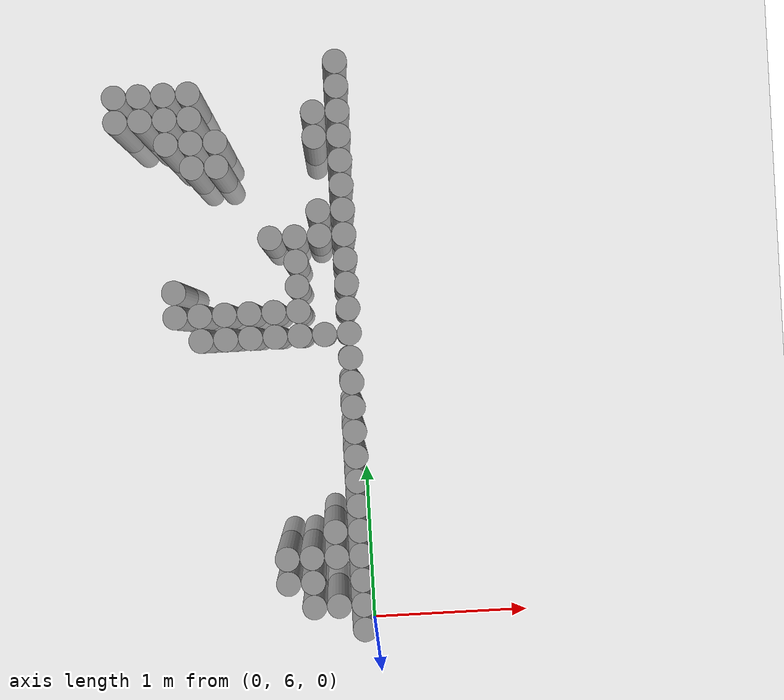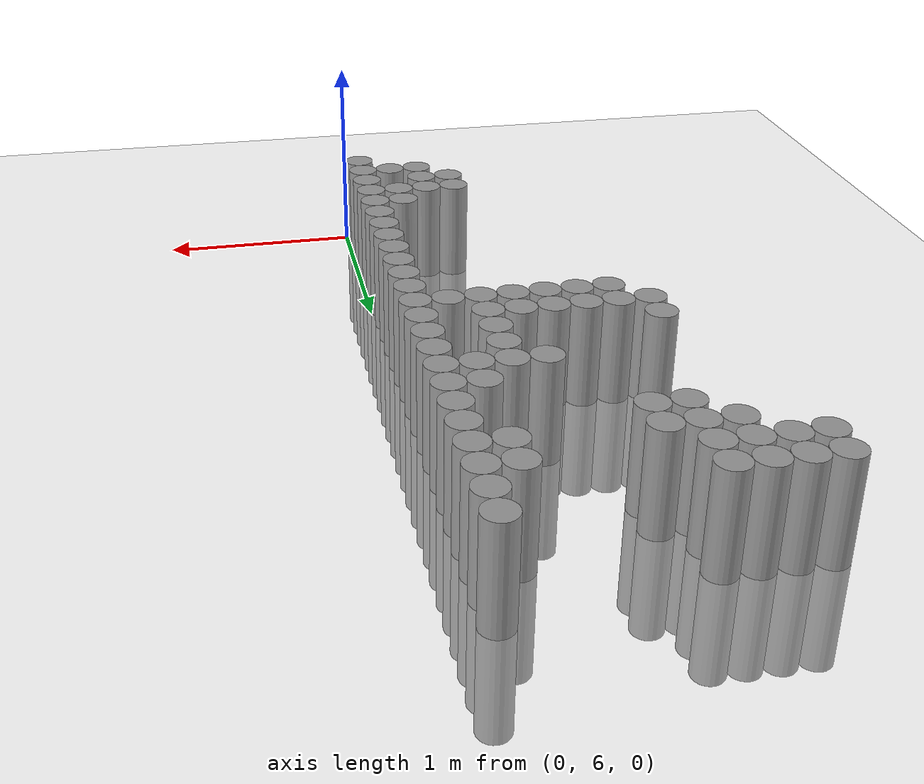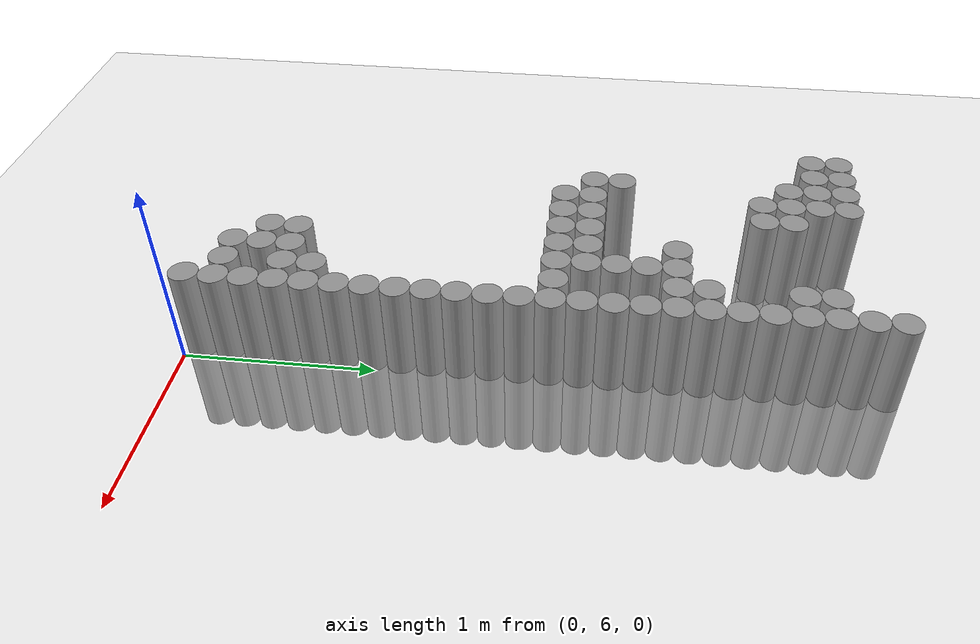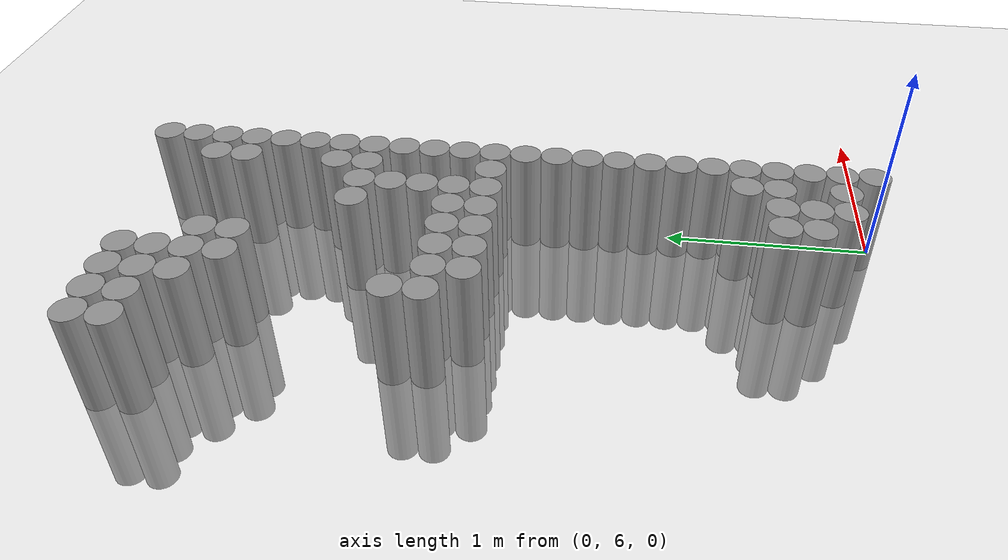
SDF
<sdf version="1.6">
 <world name="default">
  <model name="ground_plane">
   <static>1</static>
   <link name="link">
    <collision name="collision">
     <geometry><plane><normal>0 0 1</normal><size>100 100</size></plane></geometry>
     <surface><friction><ode><mu>100</mu><mu2>50</mu2></ode></friction></surface>
    </collision>
    <visual name="visual">
     <cast_shadows>0</cast_shadows>
     <geometry><plane><normal>0 0 1</normal><size>100 100</size></plane></geometry>
     <material>
      <script><uri>file://media/materials/scripts/gazebo.material</uri><name>Gazebo/Grey</name></script>
     </material>
    </visual>
   </link>
  </model>
  <model name="unit_cylinder_188">
   <pose>-1.425000 9.225000 0.000000 0.000000 0.000000 0.000000</pose>
   <link name="link">
    <inertial>
     <mass>1</mass>
     <inertia><ixx>0.145833</ixx><ixy>0</ixy><ixz>0</ixz><iyy>0.145833</iyy><iyz>0</iyz><izz>0.125</izz></inertia>
    </inertial>
    <collision name="collision">
     <geometry><cylinder><radius>0.075000</radius><length>1</length></cylinder></geometry>
    </collision>
    <visual name="visual">
     <geometry><cylinder><radius>0.075000</radius><length>1</length></cylinder></geometry>
     <material>
      <script><name>Gazebo/Grey</name><uri>file://media/materials/scripts/gazebo.material</uri></script>
     </material>
    </visual>
   </link>
  </model>
  <model name="unit_cylinder_189">
   <pose>-1.425000 9.375000 0.000000 0.000000 0.000000 0.000000</pose>
   <link name="link">
    <inertial>
     <mass>1</mass>
     <inertia><ixx>0.145833</ixx><ixy>0</ixy><ixz>0</ixz><iyy>0.145833</iyy><iyz>0</iyz><izz>0.125</izz></inertia>
    </inertial>
    <collision name="collision">
     <geometry><cylinder><radius>0.075000</radius><length>1</length></cylinder></geometry>
    </collision>
    <visual name="visual">
     <geometry><cylinder><radius>0.075000</radius><length>1</length></cylinder></geometry>
     <material>
      <script><name>Gazebo/Grey</name><uri>file://media/materials/scripts/gazebo.material</uri></script>
     </material>
    </visual>
   </link>
  </model>
  <model name="unit_cylinder_190">
   <pose>-1.275000 9.225000 0.000000 0.000000 0.000000 0.000000</pose>
   <link name="link">
    <inertial>
     <mass>1</mass>
     <inertia><ixx>0.145833</ixx><ixy>0</ixy><ixz>0</ixz><iyy>0.145833</iyy><iyz>0</iyz><izz>0.125</izz></inertia>
    </inertial>
    <collision name="collision">
     <geometry><cylinder><radius>0.075000</radius><length>1</length></cylinder></geometry>
    </collision>
    <visual name="visual">
     <geometry><cylinder><radius>0.075000</radius><length>1</length></cylinder></geometry>
     <material>
      <script><name>Gazebo/Grey</name><uri>file://media/materials/scripts/gazebo.material</uri></script>
     </material>
    </visual>
   </link>
  </model>
  <model name="unit_cylinder_191">
   <pose>-1.275000 9.375000 0.000000 0.000000 0.000000 0.000000</pose>
   <link name="link">
    <inertial>
     <mass>1</mass>
     <inertia><ixx>0.145833</ixx><ixy>0</ixy><ixz>0</ixz><iyy>0.145833</iyy><iyz>0</iyz><izz>0.125</izz></inertia>
    </inertial>
    <collision name="collision">
     <geometry><cylinder><radius>0.075000</radius><length>1</length></cylinder></geometry>
    </collision>
    <visual name="visual">
     <geometry><cylinder><radius>0.075000</radius><length>1</length></cylinder></geometry>
     <material>
      <script><name>Gazebo/Grey</name><uri>file://media/materials/scripts/gazebo.material</uri></script>
     </material>
    </visual>
   </link>
  </model>
  <model name="unit_cylinder_192">
   <pose>-1.125000 8.025000 0.000000 0.000000 0.000000 0.000000</pose>
   <link name="link">
    <inertial>
     <mass>1</mass>
     <inertia><ixx>0.145833</ixx><ixy>0</ixy><ixz>0</ixz><iyy>0.145833</iyy><iyz>0</iyz><izz>0.125</izz></inertia>
    </inertial>
    <collision name="collision">
     <geometry><cylinder><radius>0.075000</radius><length>1</length></cylinder></geometry>
    </collision>
    <visual name="visual">
     <geometry><cylinder><radius>0.075000</radius><length>1</length></cylinder></geometry>
     <material>
      <script><name>Gazebo/Grey</name><uri>file://media/materials/scripts/gazebo.material</uri></script>
     </material>
    </visual>
   </link>
  </model>
  <model name="unit_cylinder_193">
   <pose>-1.125000 8.175000 0.000000 0.000000 0.000000 0.000000</pose>
   <link name="link">
    <inertial>
     <mass>1</mass>
     <inertia><ixx>0.145833</ixx><ixy>0</ixy><ixz>0</ixz><iyy>0.145833</iyy><iyz>0</iyz><izz>0.125</izz></inertia>
    </inertial>
    <collision name="collision">
     <geometry><cylinder><radius>0.075000</radius><length>1</length></cylinder></geometry>
    </collision>
    <visual name="visual">
     <geometry><cylinder><radius>0.075000</radius><length>1</length></cylinder></geometry>
     <material>
      <script><name>Gazebo/Grey</name><uri>file://media/materials/scripts/gazebo.material</uri></script>
     </material>
    </visual>
   </link>
  </model>
  <model name="unit_cylinder_194">
   <pose>-1.125000 9.075000 0.000000 0.000000 0.000000 0.000000</pose>
   <link name="link">
    <inertial>
     <mass>1</mass>
     <inertia><ixx>0.145833</ixx><ixy>0</ixy><ixz>0</ixz><iyy>0.145833</iyy><iyz>0</iyz><izz>0.125</izz></inertia>
    </inertial>
    <collision name="collision">
     <geometry><cylinder><radius>0.075000</radius><length>1</length></cylinder></geometry>
    </collision>
    <visual name="visual">
     <geometry><cylinder><radius>0.075000</radius><length>1</length></cylinder></geometry>
     <material>
      <script><name>Gazebo/Grey</name><uri>file://media/materials/scripts/gazebo.material</uri></script>
     </material>
    </visual>
   </link>
  </model>
  <model name="unit_cylinder_195">
   <pose>-1.125000 9.225000 0.000000 0.000000 0.000000 0.000000</pose>
   <link name="link">
    <inertial>
     <mass>1</mass>
     <inertia><ixx>0.145833</ixx><ixy>0</ixy><ixz>0</ixz><iyy>0.145833</iyy><iyz>0</iyz><izz>0.125</izz></inertia>
    </inertial>
    <collision name="collision">
     <geometry><cylinder><radius>0.075000</radius><length>1</length></cylinder></geometry>
    </collision>
    <visual name="visual">
     <geometry><cylinder><radius>0.075000</radius><length>1</length></cylinder></geometry>
     <material>
      <script><name>Gazebo/Grey</name><uri>file://media/materials/scripts/gazebo.material</uri></script>
     </material>
    </visual>
   </link>
  </model>
  <model name="unit_cylinder_196">
   <pose>-1.125000 9.375000 0.000000 0.000000 0.000000 0.000000</pose>
   <link name="link">
    <inertial>
     <mass>1</mass>
     <inertia><ixx>0.145833</ixx><ixy>0</ixy><ixz>0</ixz><iyy>0.145833</iyy><iyz>0</iyz><izz>0.125</izz></inertia>
    </inertial>
    <collision name="collision">
     <geometry><cylinder><radius>0.075000</radius><length>1</length></cylinder></geometry>
    </collision>
    <visual name="visual">
     <geometry><cylinder><radius>0.075000</radius><length>1</length></cylinder></geometry>
     <material>
      <script><name>Gazebo/Grey</name><uri>file://media/materials/scripts/gazebo.material</uri></script>
     </material>
    </visual>
   </link>
  </model>
  <model name="unit_cylinder_197">
   <pose>-0.975000 7.875000 0.000000 0.000000 0.000000 0.000000</pose>
   <link name="link">
    <inertial>
     <mass>1</mass>
     <inertia><ixx>0.145833</ixx><ixy>0</ixy><ixz>0</ixz><iyy>0.145833</iyy><iyz>0</iyz><izz>0.125</izz></inertia>
    </inertial>
    <collision name="collision">
     <geometry><cylinder><radius>0.075000</radius><length>1</length></cylinder></geometry>
    </collision>
    <visual name="visual">
     <geometry><cylinder><radius>0.075000</radius><length>1</length></cylinder></geometry>
     <material>
      <script><name>Gazebo/Grey</name><uri>file://media/materials/scripts/gazebo.material</uri></script>
     </material>
    </visual>
   </link>
  </model>
  <model name="unit_cylinder_198">
   <pose>-0.975000 8.025000 0.000000 0.000000 0.000000 0.000000</pose>
   <link name="link">
    <inertial>
     <mass>1</mass>
     <inertia><ixx>0.145833</ixx><ixy>0</ixy><ixz>0</ixz><iyy>0.145833</iyy><iyz>0</iyz><izz>0.125</izz></inertia>
    </inertial>
    <collision name="collision">
     <geometry><cylinder><radius>0.075000</radius><length>1</length></cylinder></geometry>
    </collision>
    <visual name="visual">
     <geometry><cylinder><radius>0.075000</radius><length>1</length></cylinder></geometry>
     <material>
      <script><name>Gazebo/Grey</name><uri>file://media/materials/scripts/gazebo.material</uri></script>
     </material>
    </visual>
   </link>
  </model>
  <model name="unit_cylinder_199">
   <pose>-0.975000 8.925000 0.000000 0.000000 0.000000 0.000000</pose>
   <link name="link">
    <inertial>
     <mass>1</mass>
     <inertia><ixx>0.145833</ixx><ixy>0</ixy><ixz>0</ixz><iyy>0.145833</iyy><iyz>0</iyz><izz>0.125</izz></inertia>
    </inertial>
    <collision name="collision">
     <geometry><cylinder><radius>0.075000</radius><length>1</length></cylinder></geometry>
    </collision>
    <visual name="visual">
     <geometry><cylinder><radius>0.075000</radius><length>1</length></cylinder></geometry>
     <material>
      <script><name>Gazebo/Grey</name><uri>file://media/materials/scripts/gazebo.material</uri></script>
     </material>
    </visual>
   </link>
  </model>
  <model name="unit_cylinder_200">
   <pose>-0.975000 9.075000 0.000000 0.000000 0.000000 0.000000</pose>
   <link name="link">
    <inertial>
     <mass>1</mass>
     <inertia><ixx>0.145833</ixx><ixy>0</ixy><ixz>0</ixz><iyy>0.145833</iyy><iyz>0</iyz><izz>0.125</izz></inertia>
    </inertial>
    <collision name="collision">
     <geometry><cylinder><radius>0.075000</radius><length>1</length></cylinder></geometry>
    </collision>
    <visual name="visual">
     <geometry><cylinder><radius>0.075000</radius><length>1</length></cylinder></geometry>
     <material>
      <script><name>Gazebo/Grey</name><uri>file://media/materials/scripts/gazebo.material</uri></script>
     </material>
    </visual>
   </link>
  </model>
  <model name="unit_cylinder_201">
   <pose>-0.975000 9.225000 0.000000 0.000000 0.000000 0.000000</pose>
   <link name="link">
    <inertial>
     <mass>1</mass>
     <inertia><ixx>0.145833</ixx><ixy>0</ixy><ixz>0</ixz><iyy>0.145833</iyy><iyz>0</iyz><izz>0.125</izz></inertia>
    </inertial>
    <collision name="collision">
     <geometry><cylinder><radius>0.075000</radius><length>1</length></cylinder></geometry>
    </collision>
    <visual name="visual">
     <geometry><cylinder><radius>0.075000</radius><length>1</length></cylinder></geometry>
     <material>
      <script><name>Gazebo/Grey</name><uri>file://media/materials/scripts/gazebo.material</uri></script>
     </material>
    </visual>
   </link>
  </model>
  <model name="unit_cylinder_202">
   <pose>-0.975000 9.375000 0.000000 0.000000 0.000000 0.000000</pose>
   <link name="link">
    <inertial>
     <mass>1</mass>
     <inertia><ixx>0.145833</ixx><ixy>0</ixy><ixz>0</ixz><iyy>0.145833</iyy><iyz>0</iyz><izz>0.125</izz></inertia>
    </inertial>
    <collision name="collision">
     <geometry><cylinder><radius>0.075000</radius><length>1</length></cylinder></geometry>
    </collision>
    <visual name="visual">
     <geometry><cylinder><radius>0.075000</radius><length>1</length></cylinder></geometry>
     <material>
      <script><name>Gazebo/Grey</name><uri>file://media/materials/scripts/gazebo.material</uri></script>
     </material>
    </visual>
   </link>
  </model>
  <model name="unit_cylinder_203">
   <pose>-0.825000 7.875000 0.000000 0.000000 0.000000 0.000000</pose>
   <link name="link">
    <inertial>
     <mass>1</mass>
     <inertia><ixx>0.145833</ixx><ixy>0</ixy><ixz>0</ixz><iyy>0.145833</iyy><iyz>0</iyz><izz>0.125</izz></inertia>
    </inertial>
    <collision name="collision">
     <geometry><cylinder><radius>0.075000</radius><length>1</length></cylinder></geometry>
    </collision>
    <visual name="visual">
     <geometry><cylinder><radius>0.075000</radius><length>1</length></cylinder></geometry>
     <material>
      <script><name>Gazebo/Grey</name><uri>file://media/materials/scripts/gazebo.material</uri></script>
     </material>
    </visual>
   </link>
  </model>
  <model name="unit_cylinder_204">
   <pose>-0.825000 8.025000 0.000000 0.000000 0.000000 0.000000</pose>
   <link name="link">
    <inertial>
     <mass>1</mass>
     <inertia><ixx>0.145833</ixx><ixy>0</ixy><ixz>0</ixz><iyy>0.145833</iyy><iyz>0</iyz><izz>0.125</izz></inertia>
    </inertial>
    <collision name="collision">
     <geometry><cylinder><radius>0.075000</radius><length>1</length></cylinder></geometry>
    </collision>
    <visual name="visual">
     <geometry><cylinder><radius>0.075000</radius><length>1</length></cylinder></geometry>
     <material>
      <script><name>Gazebo/Grey</name><uri>file://media/materials/scripts/gazebo.material</uri></script>
     </material>
    </visual>
   </link>
  </model>
  <model name="unit_cylinder_205">
   <pose>-0.825000 8.925000 0.000000 0.000000 0.000000 0.000000</pose>
   <link name="link">
    <inertial>
     <mass>1</mass>
     <inertia><ixx>0.145833</ixx><ixy>0</ixy><ixz>0</ixz><iyy>0.145833</iyy><iyz>0</iyz><izz>0.125</izz></inertia>
    </inertial>
    <collision name="collision">
     <geometry><cylinder><radius>0.075000</radius><length>1</length></cylinder></geometry>
    </collision>
    <visual name="visual">
     <geometry><cylinder><radius>0.075000</radius><length>1</length></cylinder></geometry>
     <material>
      <script><name>Gazebo/Grey</name><uri>file://media/materials/scripts/gazebo.material</uri></script>
     </material>
    </visual>
   </link>
  </model>
  <model name="unit_cylinder_206">
   <pose>-0.825000 9.075000 0.000000 0.000000 0.000000 0.000000</pose>
   <link name="link">
    <inertial>
     <mass>1</mass>
     <inertia><ixx>0.145833</ixx><ixy>0</ixy><ixz>0</ixz><iyy>0.145833</iyy><iyz>0</iyz><izz>0.125</izz></inertia>
    </inertial>
    <collision name="collision">
     <geometry><cylinder><radius>0.075000</radius><length>1</length></cylinder></geometry>
    </collision>
    <visual name="visual">
     <geometry><cylinder><radius>0.075000</radius><length>1</length></cylinder></geometry>
     <material>
      <script><name>Gazebo/Grey</name><uri>file://media/materials/scripts/gazebo.material</uri></script>
     </material>
    </visual>
   </link>
  </model>
  <model name="unit_cylinder_207">
   <pose>-0.675000 7.875000 0.000000 0.000000 0.000000 0.000000</pose>
   <link name="link">
    <inertial>
     <mass>1</mass>
     <inertia><ixx>0.145833</ixx><ixy>0</ixy><ixz>0</ixz><iyy>0.145833</iyy><iyz>0</iyz><izz>0.125</izz></inertia>
    </inertial>
    <collision name="collision">
     <geometry><cylinder><radius>0.075000</radius><length>1</length></cylinder></geometry>
    </collision>
    <visual name="visual">
     <geometry><cylinder><radius>0.075000</radius><length>1</length></cylinder></geometry>
     <material>
      <script><name>Gazebo/Grey</name><uri>file://media/materials/scripts/gazebo.material</uri></script>
     </material>
    </visual>
   </link>
  </model>
  <model name="unit_cylinder_208">
   <pose>-0.675000 8.025000 0.000000 0.000000 0.000000 0.000000</pose>
   <link name="link">
    <inertial>
     <mass>1</mass>
     <inertia><ixx>0.145833</ixx><ixy>0</ixy><ixz>0</ixz><iyy>0.145833</iyy><iyz>0</iyz><izz>0.125</izz></inertia>
    </inertial>
    <collision name="collision">
     <geometry><cylinder><radius>0.075000</radius><length>1</length></cylinder></geometry>
    </collision>
    <visual name="visual">
     <geometry><cylinder><radius>0.075000</radius><length>1</length></cylinder></geometry>
     <material>
      <script><name>Gazebo/Grey</name><uri>file://media/materials/scripts/gazebo.material</uri></script>
     </material>
    </visual>
   </link>
  </model>
  <model name="unit_cylinder_209">
   <pose>-0.525000 6.375000 0.000000 0.000000 0.000000 0.000000</pose>
   <link name="link">
    <inertial>
     <mass>1</mass>
     <inertia><ixx>0.145833</ixx><ixy>0</ixy><ixz>0</ixz><iyy>0.145833</iyy><iyz>0</iyz><izz>0.125</izz></inertia>
    </inertial>
    <collision name="collision">
     <geometry><cylinder><radius>0.075000</radius><length>1</length></cylinder></geometry>
    </collision>
    <visual name="visual">
     <geometry><cylinder><radius>0.075000</radius><length>1</length></cylinder></geometry>
     <material>
      <script><name>Gazebo/Grey</name><uri>file://media/materials/scripts/gazebo.material</uri></script>
     </material>
    </visual>
   </link>
  </model>
  <model name="unit_cylinder_210">
   <pose>-0.525000 6.525000 0.000000 0.000000 0.000000 0.000000</pose>
   <link name="link">
    <inertial>
     <mass>1</mass>
     <inertia><ixx>0.145833</ixx><ixy>0</ixy><ixz>0</ixz><iyy>0.145833</iyy><iyz>0</iyz><izz>0.125</izz></inertia>
    </inertial>
    <collision name="collision">
     <geometry><cylinder><radius>0.075000</radius><length>1</length></cylinder></geometry>
    </collision>
    <visual name="visual">
     <geometry><cylinder><radius>0.075000</radius><length>1</length></cylinder></geometry>
     <material>
      <script><name>Gazebo/Grey</name><uri>file://media/materials/scripts/gazebo.material</uri></script>
     </material>
    </visual>
   </link>
  </model>
  <model name="unit_cylinder_211">
   <pose>-0.525000 7.875000 0.000000 0.000000 0.000000 0.000000</pose>
   <link name="link">
    <inertial>
     <mass>1</mass>
     <inertia><ixx>0.145833</ixx><ixy>0</ixy><ixz>0</ixz><iyy>0.145833</iyy><iyz>0</iyz><izz>0.125</izz></inertia>
    </inertial>
    <collision name="collision">
     <geometry><cylinder><radius>0.075000</radius><length>1</length></cylinder></geometry>
    </collision>
    <visual name="visual">
     <geometry><cylinder><radius>0.075000</radius><length>1</length></cylinder></geometry>
     <material>
      <script><name>Gazebo/Grey</name><uri>file://media/materials/scripts/gazebo.material</uri></script>
     </material>
    </visual>
   </link>
  </model>
  <model name="unit_cylinder_212">
   <pose>-0.525000 8.025000 0.000000 0.000000 0.000000 0.000000</pose>
   <link name="link">
    <inertial>
     <mass>1</mass>
     <inertia><ixx>0.145833</ixx><ixy>0</ixy><ixz>0</ixz><iyy>0.145833</iyy><iyz>0</iyz><izz>0.125</izz></inertia>
    </inertial>
    <collision name="collision">
     <geometry><cylinder><radius>0.075000</radius><length>1</length></cylinder></geometry>
    </collision>
    <visual name="visual">
     <geometry><cylinder><radius>0.075000</radius><length>1</length></cylinder></geometry>
     <material>
      <script><name>Gazebo/Grey</name><uri>file://media/materials/scripts/gazebo.material</uri></script>
     </material>
    </visual>
   </link>
  </model>
  <model name="unit_cylinder_213">
   <pose>-0.525000 8.475000 0.000000 0.000000 0.000000 0.000000</pose>
   <link name="link">
    <inertial>
     <mass>1</mass>
     <inertia><ixx>0.145833</ixx><ixy>0</ixy><ixz>0</ixz><iyy>0.145833</iyy><iyz>0</iyz><izz>0.125</izz></inertia>
    </inertial>
    <collision name="collision">
     <geometry><cylinder><radius>0.075000</radius><length>1</length></cylinder></geometry>
    </collision>
    <visual name="visual">
     <geometry><cylinder><radius>0.075000</radius><length>1</length></cylinder></geometry>
     <material>
      <script><name>Gazebo/Grey</name><uri>file://media/materials/scripts/gazebo.material</uri></script>
     </material>
    </visual>
   </link>
  </model>
  <model name="unit_cylinder_215">
   <pose>-0.375000 6.225000 0.000000 0.000000 0.000000 0.000000</pose>
   <link name="link">
    <inertial>
     <mass>1</mass>
     <inertia><ixx>0.145833</ixx><ixy>0</ixy><ixz>0</ixz><iyy>0.145833</iyy><iyz>0</iyz><izz>0.125</izz></inertia>
    </inertial>
    <collision name="collision">
     <geometry><cylinder><radius>0.075000</radius><length>1</length></cylinder></geometry>
    </collision>
    <visual name="visual">
     <geometry><cylinder><radius>0.075000</radius><length>1</length></cylinder></geometry>
     <material>
      <script><name>Gazebo/Grey</name><uri>file://media/materials/scripts/gazebo.material</uri></script>
     </material>
    </visual>
   </link>
  </model>
  <model name="unit_cylinder_216">
   <pose>-0.375000 6.375000 0.000000 0.000000 0.000000 0.000000</pose>
   <link name="link">
    <inertial>
     <mass>1</mass>
     <inertia><ixx>0.145833</ixx><ixy>0</ixy><ixz>0</ixz><iyy>0.145833</iyy><iyz>0</iyz><izz>0.125</izz></inertia>
    </inertial>
    <collision name="collision">
     <geometry><cylinder><radius>0.075000</radius><length>1</length></cylinder></geometry>
    </collision>
    <visual name="visual">
     <geometry><cylinder><radius>0.075000</radius><length>1</length></cylinder></geometry>
     <material>
      <script><name>Gazebo/Grey</name><uri>file://media/materials/scripts/gazebo.material</uri></script>
     </material>
    </visual>
   </link>
  </model>
  <model name="unit_cylinder_217">
   <pose>-0.375000 6.525000 0.000000 0.000000 0.000000 0.000000</pose>
   <link name="link">
    <inertial>
     <mass>1</mass>
     <inertia><ixx>0.145833</ixx><ixy>0</ixy><ixz>0</ixz><iyy>0.145833</iyy><iyz>0</iyz><izz>0.125</izz></inertia>
    </inertial>
    <collision name="collision">
     <geometry><cylinder><radius>0.075000</radius><length>1</length></cylinder></geometry>
    </collision>
    <visual name="visual">
     <geometry><cylinder><radius>0.075000</radius><length>1</length></cylinder></geometry>
     <material>
      <script><name>Gazebo/Grey</name><uri>file://media/materials/scripts/gazebo.material</uri></script>
     </material>
    </visual>
   </link>
  </model>
  <model name="unit_cylinder_218">
   <pose>-0.375000 7.875000 0.000000 0.000000 0.000000 0.000000</pose>
   <link name="link">
    <inertial>
     <mass>1</mass>
     <inertia><ixx>0.145833</ixx><ixy>0</ixy><ixz>0</ixz><iyy>0.145833</iyy><iyz>0</iyz><izz>0.125</izz></inertia>
    </inertial>
    <collision name="collision">
     <geometry><cylinder><radius>0.075000</radius><length>1</length></cylinder></geometry>
    </collision>
    <visual name="visual">
     <geometry><cylinder><radius>0.075000</radius><length>1</length></cylinder></geometry>
     <material>
      <script><name>Gazebo/Grey</name><uri>file://media/materials/scripts/gazebo.material</uri></script>
     </material>
    </visual>
   </link>
  </model>
  <model name="unit_cylinder_219">
   <pose>-0.375000 8.025000 0.000000 0.000000 0.000000 0.000000</pose>
   <link name="link">
    <inertial>
     <mass>1</mass>
     <inertia><ixx>0.145833</ixx><ixy>0</ixy><ixz>0</ixz><iyy>0.145833</iyy><iyz>0</iyz><izz>0.125</izz></inertia>
    </inertial>
    <collision name="collision">
     <geometry><cylinder><radius>0.075000</radius><length>1</length></cylinder></geometry>
    </collision>
    <visual name="visual">
     <geometry><cylinder><radius>0.075000</radius><length>1</length></cylinder></geometry>
     <material>
      <script><name>Gazebo/Grey</name><uri>file://media/materials/scripts/gazebo.material</uri></script>
     </material>
    </visual>
   </link>
  </model>
  <model name="unit_cylinder_220">
   <pose>-0.375000 8.175000 0.000000 0.000000 0.000000 0.000000</pose>
   <link name="link">
    <inertial>
     <mass>1</mass>
     <inertia><ixx>0.145833</ixx><ixy>0</ixy><ixz>0</ixz><iyy>0.145833</iyy><iyz>0</iyz><izz>0.125</izz></inertia>
    </inertial>
    <collision name="collision">
     <geometry><cylinder><radius>0.075000</radius><length>1</length></cylinder></geometry>
    </collision>
    <visual name="visual">
     <geometry><cylinder><radius>0.075000</radius><length>1</length></cylinder></geometry>
     <material>
      <script><name>Gazebo/Grey</name><uri>file://media/materials/scripts/gazebo.material</uri></script>
     </material>
    </visual>
   </link>
  </model>
  <model name="unit_cylinder_221">
   <pose>-0.375000 8.325000 0.000000 0.000000 0.000000 0.000000</pose>
   <link name="link">
    <inertial>
     <mass>1</mass>
     <inertia><ixx>0.145833</ixx><ixy>0</ixy><ixz>0</ixz><iyy>0.145833</iyy><iyz>0</iyz><izz>0.125</izz></inertia>
    </inertial>
    <collision name="collision">
     <geometry><cylinder><radius>0.075000</radius><length>1</length></cylinder></geometry>
    </collision>
    <visual name="visual">
     <geometry><cylinder><radius>0.075000</radius><length>1</length></cylinder></geometry>
     <material>
      <script><name>Gazebo/Grey</name><uri>file://media/materials/scripts/gazebo.material</uri></script>
     </material>
    </visual>
   </link>
  </model>
  <model name="unit_cylinder_222">
   <pose>-0.375000 8.475000 0.000000 0.000000 0.000000 0.000000</pose>
   <link name="link">
    <inertial>
     <mass>1</mass>
     <inertia><ixx>0.145833</ixx><ixy>0</ixy><ixz>0</ixz><iyy>0.145833</iyy><iyz>0</iyz><izz>0.125</izz></inertia>
    </inertial>
    <collision name="collision">
     <geometry><cylinder><radius>0.075000</radius><length>1</length></cylinder></geometry>
    </collision>
    <visual name="visual">
     <geometry><cylinder><radius>0.075000</radius><length>1</length></cylinder></geometry>
     <material>
      <script><name>Gazebo/Grey</name><uri>file://media/materials/scripts/gazebo.material</uri></script>
     </material>
    </visual>
   </link>
  </model>
  <model name="unit_cylinder_227">
   <pose>-0.225000 6.225000 0.000000 0.000000 0.000000 0.000000</pose>
   <link name="link">
    <inertial>
     <mass>1</mass>
     <inertia><ixx>0.145833</ixx><ixy>0</ixy><ixz>0</ixz><iyy>0.145833</iyy><iyz>0</iyz><izz>0.125</izz></inertia>
    </inertial>
    <collision name="collision">
     <geometry><cylinder><radius>0.075000</radius><length>1</length></cylinder></geometry>
    </collision>
    <visual name="visual">
     <geometry><cylinder><radius>0.075000</radius><length>1</length></cylinder></geometry>
     <material>
      <script><name>Gazebo/Grey</name><uri>file://media/materials/scripts/gazebo.material</uri></script>
     </material>
    </visual>
   </link>
  </model>
  <model name="unit_cylinder_228">
   <pose>-0.225000 6.525000 0.000000 0.000000 0.000000 0.000000</pose>
   <link name="link">
    <inertial>
     <mass>1</mass>
     <inertia><ixx>0.145833</ixx><ixy>0</ixy><ixz>0</ixz><iyy>0.145833</iyy><iyz>0</iyz><izz>0.125</izz></inertia>
    </inertial>
    <collision name="collision">
     <geometry><cylinder><radius>0.075000</radius><length>1</length></cylinder></geometry>
    </collision>
    <visual name="visual">
     <geometry><cylinder><radius>0.075000</radius><length>1</length></cylinder></geometry>
     <material>
      <script><name>Gazebo/Grey</name><uri>file://media/materials/scripts/gazebo.material</uri></script>
     </material>
    </visual>
   </link>
  </model>
  <model name="unit_cylinder_229">
   <pose>-0.225000 6.675000 0.000000 0.000000 0.000000 0.000000</pose>
   <link name="link">
    <inertial>
     <mass>1</mass>
     <inertia><ixx>0.145833</ixx><ixy>0</ixy><ixz>0</ixz><iyy>0.145833</iyy><iyz>0</iyz><izz>0.125</izz></inertia>
    </inertial>
    <collision name="collision">
     <geometry><cylinder><radius>0.075000</radius><length>1</length></cylinder></geometry>
    </collision>
    <visual name="visual">
     <geometry><cylinder><radius>0.075000</radius><length>1</length></cylinder></geometry>
     <material>
      <script><name>Gazebo/Grey</name><uri>file://media/materials/scripts/gazebo.material</uri></script>
     </material>
    </visual>
   </link>
  </model>
  <model name="unit_cylinder_230">
   <pose>-0.225000 7.875000 0.000000 0.000000 0.000000 0.000000</pose>
   <link name="link">
    <inertial>
     <mass>1</mass>
     <inertia><ixx>0.145833</ixx><ixy>0</ixy><ixz>0</ixz><iyy>0.145833</iyy><iyz>0</iyz><izz>0.125</izz></inertia>
    </inertial>
    <collision name="collision">
     <geometry><cylinder><radius>0.075000</radius><length>1</length></cylinder></geometry>
    </collision>
    <visual name="visual">
     <geometry><cylinder><radius>0.075000</radius><length>1</length></cylinder></geometry>
     <material>
      <script><name>Gazebo/Grey</name><uri>file://media/materials/scripts/gazebo.material</uri></script>
     </material>
    </visual>
   </link>
  </model>
  <model name="unit_cylinder_231">
   <pose>-0.225000 8.475000 0.000000 0.000000 0.000000 0.000000</pose>
   <link name="link">
    <inertial>
     <mass>1</mass>
     <inertia><ixx>0.145833</ixx><ixy>0</ixy><ixz>0</ixz><iyy>0.145833</iyy><iyz>0</iyz><izz>0.125</izz></inertia>
    </inertial>
    <collision name="collision">
     <geometry><cylinder><radius>0.075000</radius><length>1</length></cylinder></geometry>
    </collision>
    <visual name="visual">
     <geometry><cylinder><radius>0.075000</radius><length>1</length></cylinder></geometry>
     <material>
      <script><name>Gazebo/Grey</name><uri>file://media/materials/scripts/gazebo.material</uri></script>
     </material>
    </visual>
   </link>
  </model>
  <model name="unit_cylinder_232">
   <pose>-0.225000 8.625000 0.000000 0.000000 0.000000 0.000000</pose>
   <link name="link">
    <inertial>
     <mass>1</mass>
     <inertia><ixx>0.145833</ixx><ixy>0</ixy><ixz>0</ixz><iyy>0.145833</iyy><iyz>0</iyz><izz>0.125</izz></inertia>
    </inertial>
    <collision name="collision">
     <geometry><cylinder><radius>0.075000</radius><length>1</length></cylinder></geometry>
    </collision>
    <visual name="visual">
     <geometry><cylinder><radius>0.075000</radius><length>1</length></cylinder></geometry>
     <material>
      <script><name>Gazebo/Grey</name><uri>file://media/materials/scripts/gazebo.material</uri></script>
     </material>
    </visual>
   </link>
  </model>
  <model name="unit_cylinder_233">
   <pose>-0.225000 9.075000 0.000000 0.000000 0.000000 0.000000</pose>
   <link name="link">
    <inertial>
     <mass>1</mass>
     <inertia><ixx>0.145833</ixx><ixy>0</ixy><ixz>0</ixz><iyy>0.145833</iyy><iyz>0</iyz><izz>0.125</izz></inertia>
    </inertial>
    <collision name="collision">
     <geometry><cylinder><radius>0.075000</radius><length>1</length></cylinder></geometry>
    </collision>
    <visual name="visual">
     <geometry><cylinder><radius>0.075000</radius><length>1</length></cylinder></geometry>
     <material>
      <script><name>Gazebo/Grey</name><uri>file://media/materials/scripts/gazebo.material</uri></script>
     </material>
    </visual>
   </link>
  </model>
  <model name="unit_cylinder_234">
   <pose>-0.225000 9.225000 0.000000 0.000000 0.000000 0.000000</pose>
   <link name="link">
    <inertial>
     <mass>1</mass>
     <inertia><ixx>0.145833</ixx><ixy>0</ixy><ixz>0</ixz><iyy>0.145833</iyy><iyz>0</iyz><izz>0.125</izz></inertia>
    </inertial>
    <collision name="collision">
     <geometry><cylinder><radius>0.075000</radius><length>1</length></cylinder></geometry>
    </collision>
    <visual name="visual">
     <geometry><cylinder><radius>0.075000</radius><length>1</length></cylinder></geometry>
     <material>
      <script><name>Gazebo/Grey</name><uri>file://media/materials/scripts/gazebo.material</uri></script>
     </material>
    </visual>
   </link>
  </model>
  <model name="unit_cylinder_241">
   <pose>-0.075000 6.075000 0.000000 0.000000 0.000000 0.000000</pose>
   <link name="link">
    <inertial>
     <mass>1</mass>
     <inertia><ixx>0.145833</ixx><ixy>0</ixy><ixz>0</ixz><iyy>0.145833</iyy><iyz>0</iyz><izz>0.125</izz></inertia>
    </inertial>
    <collision name="collision">
     <geometry><cylinder><radius>0.075000</radius><length>1</length></cylinder></geometry>
    </collision>
    <visual name="visual">
     <geometry><cylinder><radius>0.075000</radius><length>1</length></cylinder></geometry>
     <material>
      <script><name>Gazebo/Grey</name><uri>file://media/materials/scripts/gazebo.material</uri></script>
     </material>
    </visual>
   </link>
  </model>
  <model name="unit_cylinder_242">
   <pose>-0.075000 6.225000 0.000000 0.000000 0.000000 0.000000</pose>
   <link name="link">
    <inertial>
     <mass>1</mass>
     <inertia><ixx>0.145833</ixx><ixy>0</ixy><ixz>0</ixz><iyy>0.145833</iyy><iyz>0</iyz><izz>0.125</izz></inertia>
    </inertial>
    <collision name="collision">
     <geometry><cylinder><radius>0.075000</radius><length>1</length></cylinder></geometry>
    </collision>
    <visual name="visual">
     <geometry><cylinder><radius>0.075000</radius><length>1</length></cylinder></geometry>
     <material>
      <script><name>Gazebo/Grey</name><uri>file://media/materials/scripts/gazebo.material</uri></script>
     </material>
    </visual>
   </link>
  </model>
  <model name="unit_cylinder_243">
   <pose>-0.075000 6.375000 0.000000 0.000000 0.000000 0.000000</pose>
   <link name="link">
    <inertial>
     <mass>1</mass>
     <inertia><ixx>0.145833</ixx><ixy>0</ixy><ixz>0</ixz><iyy>0.145833</iyy><iyz>0</iyz><izz>0.125</izz></inertia>
    </inertial>
    <collision name="collision">
     <geometry><cylinder><radius>0.075000</radius><length>1</length></cylinder></geometry>
    </collision>
    <visual name="visual">
     <geometry><cylinder><radius>0.075000</radius><length>1</length></cylinder></geometry>
     <material>
      <script><name>Gazebo/Grey</name><uri>file://media/materials/scripts/gazebo.material</uri></script>
     </material>
    </visual>
   </link>
  </model>
  <model name="unit_cylinder_244">
   <pose>-0.075000 6.525000 0.000000 0.000000 0.000000 0.000000</pose>
   <link name="link">
    <inertial>
     <mass>1</mass>
     <inertia><ixx>0.145833</ixx><ixy>0</ixy><ixz>0</ixz><iyy>0.145833</iyy><iyz>0</iyz><izz>0.125</izz></inertia>
    </inertial>
    <collision name="collision">
     <geometry><cylinder><radius>0.075000</radius><length>1</length></cylinder></geometry>
    </collision>
    <visual name="visual">
     <geometry><cylinder><radius>0.075000</radius><length>1</length></cylinder></geometry>
     <material>
      <script><name>Gazebo/Grey</name><uri>file://media/materials/scripts/gazebo.material</uri></script>
     </material>
    </visual>
   </link>
  </model>
  <model name="unit_cylinder_245">
   <pose>-0.075000 6.675000 0.000000 0.000000 0.000000 0.000000</pose>
   <link name="link">
    <inertial>
     <mass>1</mass>
     <inertia><ixx>0.145833</ixx><ixy>0</ixy><ixz>0</ixz><iyy>0.145833</iyy><iyz>0</iyz><izz>0.125</izz></inertia>
    </inertial>
    <collision name="collision">
     <geometry><cylinder><radius>0.075000</radius><length>1</length></cylinder></geometry>
    </collision>
    <visual name="visual">
     <geometry><cylinder><radius>0.075000</radius><length>1</length></cylinder></geometry>
     <material>
      <script><name>Gazebo/Grey</name><uri>file://media/materials/scripts/gazebo.material</uri></script>
     </material>
    </visual>
   </link>
  </model>
  <model name="unit_cylinder_246">
   <pose>-0.075000 6.825000 0.000000 0.000000 0.000000 0.000000</pose>
   <link name="link">
    <inertial>
     <mass>1</mass>
     <inertia><ixx>0.145833</ixx><ixy>0</ixy><ixz>0</ixz><iyy>0.145833</iyy><iyz>0</iyz><izz>0.125</izz></inertia>
    </inertial>
    <collision name="collision">
     <geometry><cylinder><radius>0.075000</radius><length>1</length></cylinder></geometry>
    </collision>
    <visual name="visual">
     <geometry><cylinder><radius>0.075000</radius><length>1</length></cylinder></geometry>
     <material>
      <script><name>Gazebo/Grey</name><uri>file://media/materials/scripts/gazebo.material</uri></script>
     </material>
    </visual>
   </link>
  </model>
  <model name="unit_cylinder_247">
   <pose>-0.075000 6.975000 0.000000 0.000000 0.000000 0.000000</pose>
   <link name="link">
    <inertial>
     <mass>1</mass>
     <inertia><ixx>0.145833</ixx><ixy>0</ixy><ixz>0</ixz><iyy>0.145833</iyy><iyz>0</iyz><izz>0.125</izz></inertia>
    </inertial>
    <collision name="collision">
     <geometry><cylinder><radius>0.075000</radius><length>1</length></cylinder></geometry>
    </collision>
    <visual name="visual">
     <geometry><cylinder><radius>0.075000</radius><length>1</length></cylinder></geometry>
     <material>
      <script><name>Gazebo/Grey</name><uri>file://media/materials/scripts/gazebo.material</uri></script>
     </material>
    </visual>
   </link>
  </model>
  <model name="unit_cylinder_248">
   <pose>-0.075000 7.125000 0.000000 0.000000 0.000000 0.000000</pose>
   <link name="link">
    <inertial>
     <mass>1</mass>
     <inertia><ixx>0.145833</ixx><ixy>0</ixy><ixz>0</ixz><iyy>0.145833</iyy><iyz>0</iyz><izz>0.125</izz></inertia>
    </inertial>
    <collision name="collision">
     <geometry><cylinder><radius>0.075000</radius><length>1</length></cylinder></geometry>
    </collision>
    <visual name="visual">
     <geometry><cylinder><radius>0.075000</radius><length>1</length></cylinder></geometry>
     <material>
      <script><name>Gazebo/Grey</name><uri>file://media/materials/scripts/gazebo.material</uri></script>
     </material>
    </visual>
   </link>
  </model>
  <model name="unit_cylinder_249">
   <pose>-0.075000 7.275000 0.000000 0.000000 0.000000 0.000000</pose>
   <link name="link">
    <inertial>
     <mass>1</mass>
     <inertia><ixx>0.145833</ixx><ixy>0</ixy><ixz>0</ixz><iyy>0.145833</iyy><iyz>0</iyz><izz>0.125</izz></inertia>
    </inertial>
    <collision name="collision">
     <geometry><cylinder><radius>0.075000</radius><length>1</length></cylinder></geometry>
    </collision>
    <visual name="visual">
     <geometry><cylinder><radius>0.075000</radius><length>1</length></cylinder></geometry>
     <material>
      <script><name>Gazebo/Grey</name><uri>file://media/materials/scripts/gazebo.material</uri></script>
     </material>
    </visual>
   </link>
  </model>
  <model name="unit_cylinder_250">
   <pose>-0.075000 7.425000 0.000000 0.000000 0.000000 0.000000</pose>
   <link name="link">
    <inertial>
     <mass>1</mass>
     <inertia><ixx>0.145833</ixx><ixy>0</ixy><ixz>0</ixz><iyy>0.145833</iyy><iyz>0</iyz><izz>0.125</izz></inertia>
    </inertial>
    <collision name="collision">
     <geometry><cylinder><radius>0.075000</radius><length>1</length></cylinder></geometry>
    </collision>
    <visual name="visual">
     <geometry><cylinder><radius>0.075000</radius><length>1</length></cylinder></geometry>
     <material>
      <script><name>Gazebo/Grey</name><uri>file://media/materials/scripts/gazebo.material</uri></script>
     </material>
    </visual>
   </link>
  </model>
  <model name="unit_cylinder_251">
   <pose>-0.075000 7.575000 0.000000 0.000000 0.000000 0.000000</pose>
   <link name="link">
    <inertial>
     <mass>1</mass>
     <inertia><ixx>0.145833</ixx><ixy>0</ixy><ixz>0</ixz><iyy>0.145833</iyy><iyz>0</iyz><izz>0.125</izz></inertia>
    </inertial>
    <collision name="collision">
     <geometry><cylinder><radius>0.075000</radius><length>1</length></cylinder></geometry>
    </collision>
    <visual name="visual">
     <geometry><cylinder><radius>0.075000</radius><length>1</length></cylinder></geometry>
     <material>
      <script><name>Gazebo/Grey</name><uri>file://media/materials/scripts/gazebo.material</uri></script>
     </material>
    </visual>
   </link>
  </model>
  <model name="unit_cylinder_252">
   <pose>-0.075000 7.725000 0.000000 0.000000 0.000000 0.000000</pose>
   <link name="link">
    <inertial>
     <mass>1</mass>
     <inertia><ixx>0.145833</ixx><ixy>0</ixy><ixz>0</ixz><iyy>0.145833</iyy><iyz>0</iyz><izz>0.125</izz></inertia>
    </inertial>
    <collision name="collision">
     <geometry><cylinder><radius>0.075000</radius><length>1</length></cylinder></geometry>
    </collision>
    <visual name="visual">
     <geometry><cylinder><radius>0.075000</radius><length>1</length></cylinder></geometry>
     <material>
      <script><name>Gazebo/Grey</name><uri>file://media/materials/scripts/gazebo.material</uri></script>
     </material>
    </visual>
   </link>
  </model>
  <model name="unit_cylinder_253">
   <pose>-0.075000 7.875000 0.000000 0.000000 0.000000 0.000000</pose>
   <link name="link">
    <inertial>
     <mass>1</mass>
     <inertia><ixx>0.145833</ixx><ixy>0</ixy><ixz>0</ixz><iyy>0.145833</iyy><iyz>0</iyz><izz>0.125</izz></inertia>
    </inertial>
    <collision name="collision">
     <geometry><cylinder><radius>0.075000</radius><length>1</length></cylinder></geometry>
    </collision>
    <visual name="visual">
     <geometry><cylinder><radius>0.075000</radius><length>1</length></cylinder></geometry>
     <material>
      <script><name>Gazebo/Grey</name><uri>file://media/materials/scripts/gazebo.material</uri></script>
     </material>
    </visual>
   </link>
  </model>
  <model name="unit_cylinder_254">
   <pose>-0.075000 8.025000 0.000000 0.000000 0.000000 0.000000</pose>
   <link name="link">
    <inertial>
     <mass>1</mass>
     <inertia><ixx>0.145833</ixx><ixy>0</ixy><ixz>0</ixz><iyy>0.145833</iyy><iyz>0</iyz><izz>0.125</izz></inertia>
    </inertial>
    <collision name="collision">
     <geometry><cylinder><radius>0.075000</radius><length>1</length></cylinder></geometry>
    </collision>
    <visual name="visual">
     <geometry><cylinder><radius>0.075000</radius><length>1</length></cylinder></geometry>
     <material>
      <script><name>Gazebo/Grey</name><uri>file://media/materials/scripts/gazebo.material</uri></script>
     </material>
    </visual>
   </link>
  </model>
  <model name="unit_cylinder_255">
   <pose>-0.075000 8.175000 0.000000 0.000000 0.000000 0.000000</pose>
   <link name="link">
    <inertial>
     <mass>1</mass>
     <inertia><ixx>0.145833</ixx><ixy>0</ixy><ixz>0</ixz><iyy>0.145833</iyy><iyz>0</iyz><izz>0.125</izz></inertia>
    </inertial>
    <collision name="collision">
     <geometry><cylinder><radius>0.075000</radius><length>1</length></cylinder></geometry>
    </collision>
    <visual name="visual">
     <geometry><cylinder><radius>0.075000</radius><length>1</length></cylinder></geometry>
     <material>
      <script><name>Gazebo/Grey</name><uri>file://media/materials/scripts/gazebo.material</uri></script>
     </material>
    </visual>
   </link>
  </model>
  <model name="unit_cylinder_256">
   <pose>-0.075000 8.325000 0.000000 0.000000 0.000000 0.000000</pose>
   <link name="link">
    <inertial>
     <mass>1</mass>
     <inertia><ixx>0.145833</ixx><ixy>0</ixy><ixz>0</ixz><iyy>0.145833</iyy><iyz>0</iyz><izz>0.125</izz></inertia>
    </inertial>
    <collision name="collision">
     <geometry><cylinder><radius>0.075000</radius><length>1</length></cylinder></geometry>
    </collision>
    <visual name="visual">
     <geometry><cylinder><radius>0.075000</radius><length>1</length></cylinder></geometry>
     <material>
      <script><name>Gazebo/Grey</name><uri>file://media/materials/scripts/gazebo.material</uri></script>
     </material>
    </visual>
   </link>
  </model>
  <model name="unit_cylinder_257">
   <pose>-0.075000 8.475000 0.000000 0.000000 0.000000 0.000000</pose>
   <link name="link">
    <inertial>
     <mass>1</mass>
     <inertia><ixx>0.145833</ixx><ixy>0</ixy><ixz>0</ixz><iyy>0.145833</iyy><iyz>0</iyz><izz>0.125</izz></inertia>
    </inertial>
    <collision name="collision">
     <geometry><cylinder><radius>0.075000</radius><length>1</length></cylinder></geometry>
    </collision>
    <visual name="visual">
     <geometry><cylinder><radius>0.075000</radius><length>1</length></cylinder></geometry>
     <material>
      <script><name>Gazebo/Grey</name><uri>file://media/materials/scripts/gazebo.material</uri></script>
     </material>
    </visual>
   </link>
  </model>
  <model name="unit_cylinder_258">
   <pose>-0.075000 8.625000 0.000000 0.000000 0.000000 0.000000</pose>
   <link name="link">
    <inertial>
     <mass>1</mass>
     <inertia><ixx>0.145833</ixx><ixy>0</ixy><ixz>0</ixz><iyy>0.145833</iyy><iyz>0</iyz><izz>0.125</izz></inertia>
    </inertial>
    <collision name="collision">
     <geometry><cylinder><radius>0.075000</radius><length>1</length></cylinder></geometry>
    </collision>
    <visual name="visual">
     <geometry><cylinder><radius>0.075000</radius><length>1</length></cylinder></geometry>
     <material>
      <script><name>Gazebo/Grey</name><uri>file://media/materials/scripts/gazebo.material</uri></script>
     </material>
    </visual>
   </link>
  </model>
  <model name="unit_cylinder_259">
   <pose>-0.075000 8.775000 0.000000 0.000000 0.000000 0.000000</pose>
   <link name="link">
    <inertial>
     <mass>1</mass>
     <inertia><ixx>0.145833</ixx><ixy>0</ixy><ixz>0</ixz><iyy>0.145833</iyy><iyz>0</iyz><izz>0.125</izz></inertia>
    </inertial>
    <collision name="collision">
     <geometry><cylinder><radius>0.075000</radius><length>1</length></cylinder></geometry>
    </collision>
    <visual name="visual">
     <geometry><cylinder><radius>0.075000</radius><length>1</length></cylinder></geometry>
     <material>
      <script><name>Gazebo/Grey</name><uri>file://media/materials/scripts/gazebo.material</uri></script>
     </material>
    </visual>
   </link>
  </model>
  <model name="unit_cylinder_260">
   <pose>-0.075000 8.925000 0.000000 0.000000 0.000000 0.000000</pose>
   <link name="link">
    <inertial>
     <mass>1</mass>
     <inertia><ixx>0.145833</ixx><ixy>0</ixy><ixz>0</ixz><iyy>0.145833</iyy><iyz>0</iyz><izz>0.125</izz></inertia>
    </inertial>
    <collision name="collision">
     <geometry><cylinder><radius>0.075000</radius><length>1</length></cylinder></geometry>
    </collision>
    <visual name="visual">
     <geometry><cylinder><radius>0.075000</radius><length>1</length></cylinder></geometry>
     <material>
      <script><name>Gazebo/Grey</name><uri>file://media/materials/scripts/gazebo.material</uri></script>
     </material>
    </visual>
   </link>
  </model>
  <model name="unit_cylinder_261">
   <pose>-0.075000 9.075000 0.000000 0.000000 0.000000 0.000000</pose>
   <link name="link">
    <inertial>
     <mass>1</mass>
     <inertia><ixx>0.145833</ixx><ixy>0</ixy><ixz>0</ixz><iyy>0.145833</iyy><iyz>0</iyz><izz>0.125</izz></inertia>
    </inertial>
    <collision name="collision">
     <geometry><cylinder><radius>0.075000</radius><length>1</length></cylinder></geometry>
    </collision>
    <visual name="visual">
     <geometry><cylinder><radius>0.075000</radius><length>1</length></cylinder></geometry>
     <material>
      <script><name>Gazebo/Grey</name><uri>file://media/materials/scripts/gazebo.material</uri></script>
     </material>
    </visual>
   </link>
  </model>
  <model name="unit_cylinder_262">
   <pose>-0.075000 9.225000 0.000000 0.000000 0.000000 0.000000</pose>
   <link name="link">
    <inertial>
     <mass>1</mass>
     <inertia><ixx>0.145833</ixx><ixy>0</ixy><ixz>0</ixz><iyy>0.145833</iyy><iyz>0</iyz><izz>0.125</izz></inertia>
    </inertial>
    <collision name="collision">
     <geometry><cylinder><radius>0.075000</radius><length>1</length></cylinder></geometry>
    </collision>
    <visual name="visual">
     <geometry><cylinder><radius>0.075000</radius><length>1</length></cylinder></geometry>
     <material>
      <script><name>Gazebo/Grey</name><uri>file://media/materials/scripts/gazebo.material</uri></script>
     </material>
    </visual>
   </link>
  </model>
  <model name="unit_cylinder_263">
   <pose>-0.075000 9.375000 0.000000 0.000000 0.000000 0.000000</pose>
   <link name="link">
    <inertial>
     <mass>1</mass>
     <inertia><ixx>0.145833</ixx><ixy>0</ixy><ixz>0</ixz><iyy>0.145833</iyy><iyz>0</iyz><izz>0.125</izz></inertia>
    </inertial>
    <collision name="collision">
     <geometry><cylinder><radius>0.075000</radius><length>1</length></cylinder></geometry>
    </collision>
    <visual name="visual">
     <geometry><cylinder><radius>0.075000</radius><length>1</length></cylinder></geometry>
     <material>
      <script><name>Gazebo/Grey</name><uri>file://media/materials/scripts/gazebo.material</uri></script>
     </material>
    </visual>
   </link>
  </model>
  <model name="unit_cylinder_264">
   <pose>-0.075000 9.525000 0.000000 0.000000 0.000000 0.000000</pose>
   <link name="link">
    <inertial>
     <mass>1</mass>
     <inertia><ixx>0.145833</ixx><ixy>0</ixy><ixz>0</ixz><iyy>0.145833</iyy><iyz>0</iyz><izz>0.125</izz></inertia>
    </inertial>
    <collision name="collision">
     <geometry><cylinder><radius>0.075000</radius><length>1</length></cylinder></geometry>
    </collision>
    <visual name="visual">
     <geometry><cylinder><radius>0.075000</radius><length>1</length></cylinder></geometry>
     <material>
      <script><name>Gazebo/Grey</name><uri>file://media/materials/scripts/gazebo.material</uri></script>
     </material>
    </visual>
   </link>
  </model>
 </world>
</sdf>
